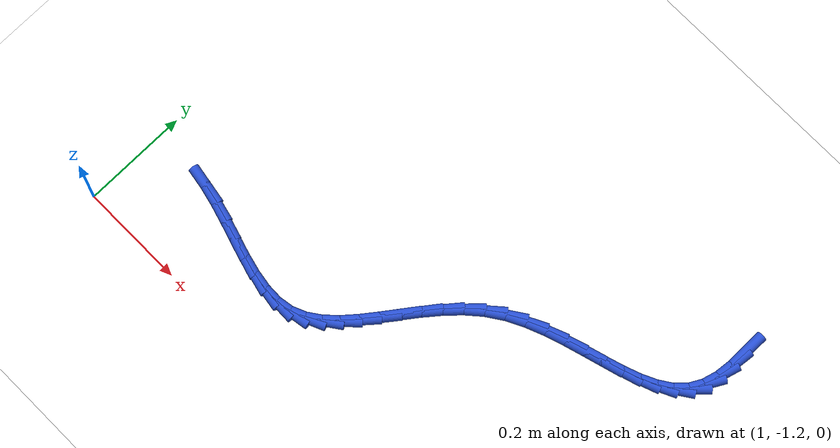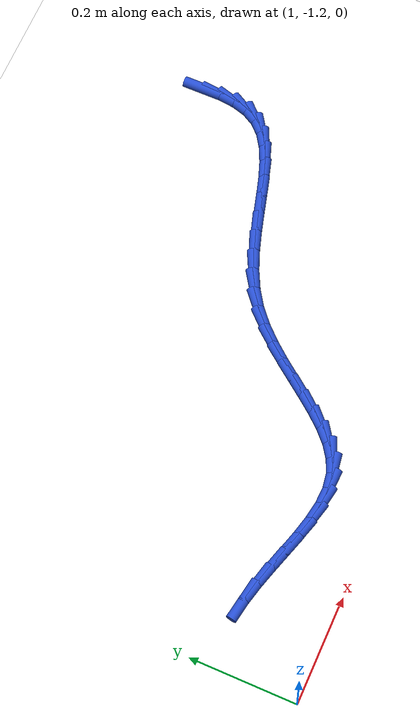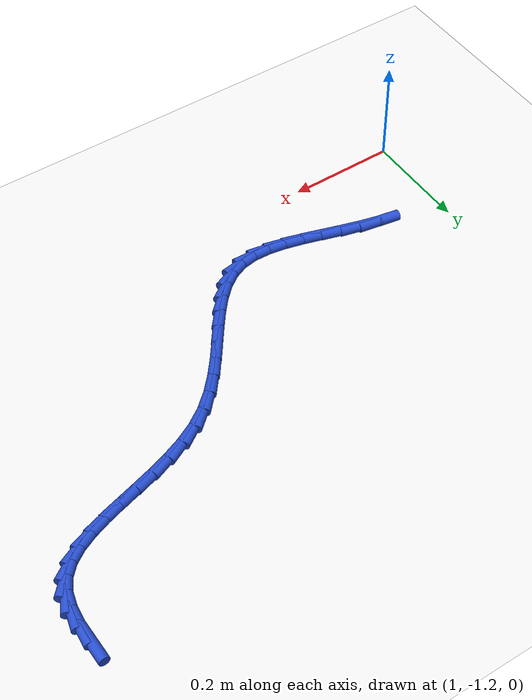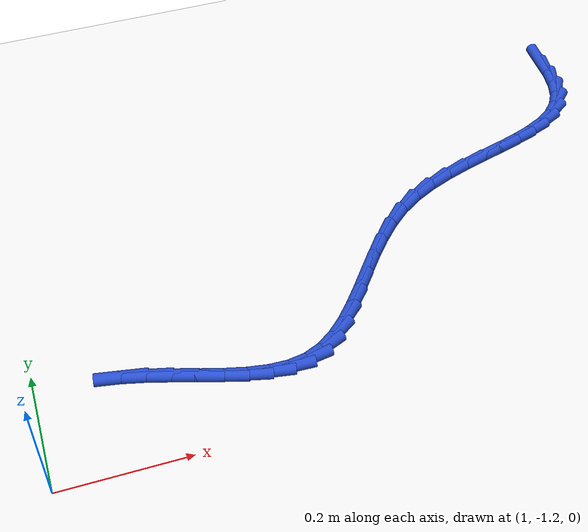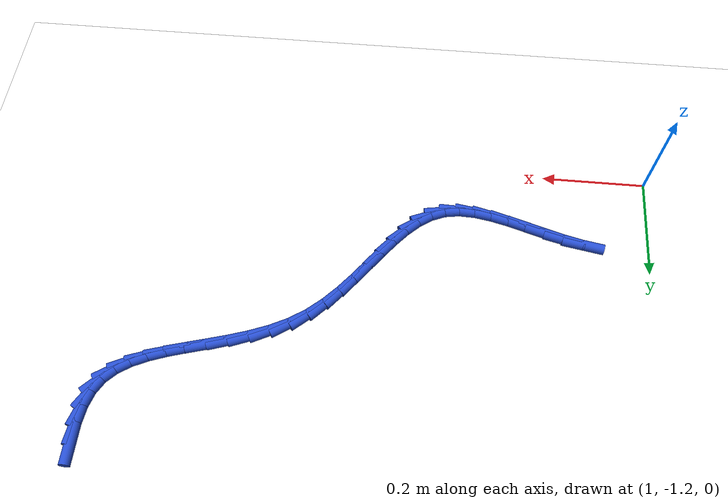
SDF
<sdf version="1.6">
 <world name="default">
  <model name="ground_plane">
   <static>1</static>
   <link name="link">
    <collision name="collision">
     <geometry><plane><normal>0 0 1</normal><size>100 100</size></plane></geometry>
     <surface><friction><ode><mu>100</mu><mu2>50</mu2></ode></friction></surface>
    </collision>
    <visual name="visual">
     <cast_shadows>0</cast_shadows>
     <geometry><plane><normal>0 0 1</normal><size>100 100</size></plane></geometry>
     <material>
      <script><uri>file://media/materials/scripts/gazebo.material</uri><name>Gazebo/WhiteGlow</name></script>
     </material>
    </visual>
   </link>
  </model>
  <model name="line">
   <link name="link_116">
    <pose>1.9984597130130652 -0.5840139245094204 0.01 0 1.57 -1.569146106106085</pose>
    <collision name="collision">
     <geometry><cylinder><radius>0.01</radius><length>0.08</length></cylinder></geometry>
    </collision>
    <visual name="visual">
     <material>
      <script><name>Gazebo/Blue</name><uri>file://media/materials/scripts/gazebo.material</uri></script>
     </material>
     <geometry><cylinder><radius>0.01</radius><length>0.08</length></cylinder></geometry>
    </visual>
   </link>
   <link name="link_117">
    <pose>1.998515716324242 -0.6179507553344195 0.01 0 1.57 1.4615613484740417</pose>
    <collision name="collision">
     <geometry><cylinder><radius>0.01</radius><length>0.08</length></cylinder></geometry>
    </collision>
    <visual name="visual">
     <material>
      <script><name>Gazebo/Blue</name><uri>file://media/materials/scripts/gazebo.material</uri></script>
     </material>
     <geometry><cylinder><radius>0.01</radius><length>0.08</length></cylinder></geometry>
    </visual>
   </link>
   <link name="link_118">
    <pose>1.995092621198045 -0.6491630027781213 0.01 0 1.57 1.295569979941581</pose>
    <collision name="collision">
     <geometry><cylinder><radius>0.01</radius><length>0.08</length></cylinder></geometry>
    </collision>
    <visual name="visual">
     <material>
      <script><name>Gazebo/Blue</name><uri>file://media/materials/scripts/gazebo.material</uri></script>
     </material>
     <geometry><cylinder><radius>0.01</radius><length>0.08</length></cylinder></geometry>
    </visual>
   </link>
   <link name="link_119">
    <pose>1.9872361721869987 -0.6769839795663476 0.01 0 1.57 1.0626116572683675</pose>
    <collision name="collision">
     <geometry><cylinder><radius>0.01</radius><length>0.08</length></cylinder></geometry>
    </collision>
    <visual name="visual">
     <material>
      <script><name>Gazebo/Blue</name><uri>file://media/materials/scripts/gazebo.material</uri></script>
     </material>
     <geometry><cylinder><radius>0.01</radius><length>0.08</length></cylinder></geometry>
    </visual>
   </link>
   <link name="link_120">
    <pose>1.9739980123722025 -0.7007518199422642 0.01 0 1.57 0.7999499154168489</pose>
    <collision name="collision">
     <geometry><cylinder><radius>0.01</radius><length>0.08</length></cylinder></geometry>
    </collision>
    <visual name="visual">
     <material>
      <script><name>Gazebo/Blue</name><uri>file://media/materials/scripts/gazebo.material</uri></script>
     </material>
     <geometry><cylinder><radius>0.01</radius><length>0.08</length></cylinder></geometry>
    </visual>
   </link>
   <link name="link_121">
    <pose>1.9550217591696548 -0.7202885440005515 0.01 0 1.57 0.5888854560158133</pose>
    <collision name="collision">
     <geometry><cylinder><radius>0.01</radius><length>0.08</length></cylinder></geometry>
    </collision>
    <visual name="visual">
     <material>
      <script><name>Gazebo/Blue</name><uri>file://media/materials/scripts/gazebo.material</uri></script>
     </material>
     <geometry><cylinder><radius>0.01</radius><length>0.08</length></cylinder></geometry>
    </visual>
   </link>
   <link name="link_122">
    <pose>1.9310404556127827 -0.7363066794330555 0.01 0 1.57 0.4417985743106785</pose>
    <collision name="collision">
     <geometry><cylinder><radius>0.01</radius><length>0.08</length></cylinder></geometry>
    </collision>
    <visual name="visual">
     <material>
      <script><name>Gazebo/Blue</name><uri>file://media/materials/scripts/gazebo.material</uri></script>
     </material>
     <geometry><cylinder><radius>0.01</radius><length>0.08</length></cylinder></geometry>
    </visual>
   </link>
   <link name="link_123">
    <pose>1.9029042914673377 -0.749614510863944 0.01 0 1.57 0.3480061803123812</pose>
    <collision name="collision">
     <geometry><cylinder><radius>0.01</radius><length>0.08</length></cylinder></geometry>
    </collision>
    <visual name="visual">
     <material>
      <script><name>Gazebo/Blue</name><uri>file://media/materials/scripts/gazebo.material</uri></script>
     </material>
     <geometry><cylinder><radius>0.01</radius><length>0.08</length></cylinder></geometry>
    </visual>
   </link>
   <link name="link_124">
    <pose>1.8714634564990735 -0.761020322917386 0.01 0 1.57 0.2953358398342895</pose>
    <collision name="collision">
     <geometry><cylinder><radius>0.01</radius><length>0.08</length></cylinder></geometry>
    </collision>
    <visual name="visual">
     <material>
      <script><name>Gazebo/Blue</name><uri>file://media/materials/scripts/gazebo.material</uri></script>
     </material>
     <geometry><cylinder><radius>0.01</radius><length>0.08</length></cylinder></geometry>
    </visual>
   </link>
   <link name="link_125">
    <pose>1.837568140473741 -0.7713324002175489 0.01 0 1.57 0.27527295848870936</pose>
    <collision name="collision">
     <geometry><cylinder><radius>0.01</radius><length>0.08</length></cylinder></geometry>
    </collision>
    <visual name="visual">
     <material>
      <script><name>Gazebo/Blue</name><uri>file://media/materials/scripts/gazebo.material</uri></script>
     </material>
     <geometry><cylinder><radius>0.01</radius><length>0.08</length></cylinder></geometry>
    </visual>
   </link>
   <link name="link_126">
    <pose>1.8020685331570931 -0.7813590273886014 0.01 0 1.57 0.28317025091269693</pose>
    <collision name="collision">
     <geometry><cylinder><radius>0.01</radius><length>0.08</length></cylinder></geometry>
    </collision>
    <visual name="visual">
     <material>
      <script><name>Gazebo/Blue</name><uri>file://media/materials/scripts/gazebo.material</uri></script>
     </material>
     <geometry><cylinder><radius>0.01</radius><length>0.08</length></cylinder></geometry>
    </visual>
   </link>
   <link name="link_127">
    <pose>1.7658148243148826 -0.7919084890547117 0.01 0 1.57 0.3174642201169591</pose>
    <collision name="collision">
     <geometry><cylinder><radius>0.01</radius><length>0.08</length></cylinder></geometry>
    </collision>
    <visual name="visual">
     <material>
      <script><name>Gazebo/Blue</name><uri>file://media/materials/scripts/gazebo.material</uri></script>
     </material>
     <geometry><cylinder><radius>0.01</radius><length>0.08</length></cylinder></geometry>
    </visual>
   </link>
   <link name="link_128">
    <pose>1.729657203712861 -0.8037890698400477 0.01 0 1.57 0.37892495856002817</pose>
    <collision name="collision">
     <geometry><cylinder><radius>0.01</radius><length>0.08</length></cylinder></geometry>
    </collision>
    <visual name="visual">
     <material>
      <script><name>Gazebo/Blue</name><uri>file://media/materials/scripts/gazebo.material</uri></script>
     </material>
     <geometry><cylinder><radius>0.01</radius><length>0.08</length></cylinder></geometry>
    </visual>
   </link>
   <link name="link_129">
    <pose>1.694445861116781 -0.8178090543687779 0.01 0 1.57 0.4698585909112312</pose>
    <collision name="collision">
     <geometry><cylinder><radius>0.01</radius><length>0.08</length></cylinder></geometry>
    </collision>
    <visual name="visual">
     <material>
      <script><name>Gazebo/Blue</name><uri>file://media/materials/scripts/gazebo.material</uri></script>
     </material>
     <geometry><cylinder><radius>0.01</radius><length>0.08</length></cylinder></geometry>
    </visual>
   </link>
   <link name="link_130">
    <pose>1.6610309862923947 -0.8347767272650706 0.01 0 1.57 0.592131646020971</pose>
    <collision name="collision">
     <geometry><cylinder><radius>0.01</radius><length>0.08</length></cylinder></geometry>
    </collision>
    <visual name="visual">
     <material>
      <script><name>Gazebo/Blue</name><uri>file://media/materials/scripts/gazebo.material</uri></script>
     </material>
     <geometry><cylinder><radius>0.01</radius><length>0.08</length></cylinder></geometry>
    </visual>
   </link>
   <link name="link_131">
    <pose>1.6302490847987956 -0.8554820913040657 0.01 0 1.57 0.7203260315740742</pose>
    <collision name="collision">
     <geometry><cylinder><radius>0.01</radius><length>0.08</length></cylinder></geometry>
    </collision>
    <visual name="visual">
     <material>
      <script><name>Gazebo/Blue</name><uri>file://media/materials/scripts/gazebo.material</uri></script>
     </material>
     <geometry><cylinder><radius>0.01</radius><length>0.08</length></cylinder></geometry>
    </visual>
   </link>
   <link name="link_132">
    <pose>1.602366353859953 -0.8799532277888091 0.01 0 1.57 0.818829501667175</pose>
    <collision name="collision">
     <geometry><cylinder><radius>0.01</radius><length>0.08</length></cylinder></geometry>
    </collision>
    <visual name="visual">
     <material>
      <script><name>Gazebo/Blue</name><uri>file://media/materials/scripts/gazebo.material</uri></script>
     </material>
     <geometry><cylinder><radius>0.01</radius><length>0.08</length></cylinder></geometry>
    </visual>
   </link>
   <link name="link_133">
    <pose>1.5768851667984813 -0.9071977633042597 0.01 0 1.57 0.8862905479098602</pose>
    <collision name="collision">
     <geometry><cylinder><radius>0.01</radius><length>0.08</length></cylinder></geometry>
    </collision>
    <visual name="visual">
     <material>
      <script><name>Gazebo/Blue</name><uri>file://media/materials/scripts/gazebo.material</uri></script>
     </material>
     <geometry><cylinder><radius>0.01</radius><length>0.08</length></cylinder></geometry>
    </visual>
   </link>
   <link name="link_134">
    <pose>1.5532544710487386 -0.9361519484288873 0.01 0 1.57 0.9244646498142458</pose>
    <collision name="collision">
     <geometry><cylinder><radius>0.01</radius><length>0.08</length></cylinder></geometry>
    </collision>
    <visual name="visual">
     <material>
      <script><name>Gazebo/Blue</name><uri>file://media/materials/scripts/gazebo.material</uri></script>
     </material>
     <geometry><cylinder><radius>0.01</radius><length>0.08</length></cylinder></geometry>
    </visual>
   </link>
   <link name="link_135">
    <pose>1.5309232140450826 -0.9657520337411617 0.01 0 1.57 0.9339914001671235</pose>
    <collision name="collision">
     <geometry><cylinder><radius>0.01</radius><length>0.08</length></cylinder></geometry>
    </collision>
    <visual name="visual">
     <material>
      <script><name>Gazebo/Blue</name><uri>file://media/materials/scripts/gazebo.material</uri></script>
     </material>
     <geometry><cylinder><radius>0.01</radius><length>0.08</length></cylinder></geometry>
    </visual>
   </link>
   <link name="link_136">
    <pose>1.5093403432218706 -0.9949342698195527 0.01 0 1.57 0.9133486585284751</pose>
    <collision name="collision">
     <geometry><cylinder><radius>0.01</radius><length>0.08</length></cylinder></geometry>
    </collision>
    <visual name="visual">
     <material>
      <script><name>Gazebo/Blue</name><uri>file://media/materials/scripts/gazebo.material</uri></script>
     </material>
     <geometry><cylinder><radius>0.01</radius><length>0.08</length></cylinder></geometry>
    </visual>
   </link>
   <link name="link_137">
    <pose>1.4879548060134609 -1.0226349072425303 0.01 0 1.57 0.8581147244018653</pose>
    <collision name="collision">
     <geometry><cylinder><radius>0.01</radius><length>0.08</length></cylinder></geometry>
    </collision>
    <visual name="visual">
     <material>
      <script><name>Gazebo/Blue</name><uri>file://media/materials/scripts/gazebo.material</uri></script>
     </material>
     <geometry><cylinder><radius>0.01</radius><length>0.08</length></cylinder></geometry>
    </visual>
   </link>
   <link name="link_138">
    <pose>1.4662155498542107 -1.0477901965885639 0.01 0 1.57 0.7605598606241643</pose>
    <collision name="collision">
     <geometry><cylinder><radius>0.01</radius><length>0.08</length></cylinder></geometry>
    </collision>
    <visual name="visual">
     <material>
      <script><name>Gazebo/Blue</name><uri>file://media/materials/scripts/gazebo.material</uri></script>
     </material>
     <geometry><cylinder><radius>0.01</radius><length>0.08</length></cylinder></geometry>
    </visual>
   </link>
   <link name="link_139">
    <pose>1.4435715221784782 -1.069336388436124 0.01 0 1.57 0.6108219984314376</pose>
    <collision name="collision">
     <geometry><cylinder><radius>0.01</radius><length>0.08</length></cylinder></geometry>
    </collision>
    <visual name="visual">
     <material>
      <script><name>Gazebo/Blue</name><uri>file://media/materials/scripts/gazebo.material</uri></script>
     </material>
     <geometry><cylinder><radius>0.01</radius><length>0.08</length></cylinder></geometry>
    </visual>
   </link>
   <link name="link_140">
    <pose>1.4194716704206207 -1.0862097333636798 0.01 0 1.57 0.40321270952590194</pose>
    <collision name="collision">
     <geometry><cylinder><radius>0.01</radius><length>0.08</length></cylinder></geometry>
    </collision>
    <visual name="visual">
     <material>
      <script><name>Gazebo/Blue</name><uri>file://media/materials/scripts/gazebo.material</uri></script>
     </material>
     <geometry><cylinder><radius>0.01</radius><length>0.08</length></cylinder></geometry>
    </visual>
   </link>
   <link name="link_141">
    <pose>1.3933649420149967 -1.097346481949701 0.01 0 1.57 0.1626080006340524</pose>
    <collision name="collision">
     <geometry><cylinder><radius>0.01</radius><length>0.08</length></cylinder></geometry>
    </collision>
    <visual name="visual">
     <material>
      <script><name>Gazebo/Blue</name><uri>file://media/materials/scripts/gazebo.material</uri></script>
     </material>
     <geometry><cylinder><radius>0.01</radius><length>0.08</length></cylinder></geometry>
    </visual>
   </link>
   <link name="link_142">
    <pose>1.3648419894449448 -1.1020258581508002 0.01 0 1.57 -0.031278313162701375</pose>
    <collision name="collision">
     <geometry><cylinder><radius>0.01</radius><length>0.08</length></cylinder></geometry>
    </collision>
    <visual name="visual">
     <material>
      <script><name>Gazebo/Blue</name><uri>file://media/materials/scripts/gazebo.material</uri></script>
     </material>
     <geometry><cylinder><radius>0.01</radius><length>0.08</length></cylinder></geometry>
    </visual>
   </link>
   <link name="link_143">
    <pose>1.3341288336515391 -1.1010648890426813 0.01 0 1.57 -0.16325918436291972</pose>
    <collision name="collision">
     <geometry><cylinder><radius>0.01</radius><length>0.08</length></cylinder></geometry>
    </collision>
    <visual name="visual">
     <material>
      <script><name>Gazebo/Blue</name><uri>file://media/materials/scripts/gazebo.material</uri></script>
     </material>
     <geometry><cylinder><radius>0.01</radius><length>0.08</length></cylinder></geometry>
    </visual>
   </link>
   <link name="link_144">
    <pose>1.301629497789979 -1.0957114262985779 0.01 0 1.57 -0.24574832688905304</pose>
    <collision name="collision">
     <geometry><cylinder><radius>0.01</radius><length>0.08</length></cylinder></geometry>
    </collision>
    <visual name="visual">
     <material>
      <script><name>Gazebo/Blue</name><uri>file://media/materials/scripts/gazebo.material</uri></script>
     </material>
     <geometry><cylinder><radius>0.01</radius><length>0.08</length></cylinder></geometry>
    </visual>
   </link>
   <link name="link_145">
    <pose>1.26774801376553 -1.0872133427697956 0.01 0 1.57 -0.28979666277002175</pose>
    <collision name="collision">
     <geometry><cylinder><radius>0.01</radius><length>0.08</length></cylinder></geometry>
    </collision>
    <visual name="visual">
     <material>
      <script><name>Gazebo/Blue</name><uri>file://media/materials/scripts/gazebo.material</uri></script>
     </material>
     <geometry><cylinder><radius>0.01</radius><length>0.08</length></cylinder></geometry>
    </visual>
   </link>
   <link name="link_146">
    <pose>1.232888413483457 -1.0768185113076387 0.01 0 1.57 -0.30213084968107673</pose>
    <collision name="collision">
     <geometry><cylinder><radius>0.01</radius><length>0.08</length></cylinder></geometry>
    </collision>
    <visual name="visual">
     <material>
      <script><name>Gazebo/Blue</name><uri>file://media/materials/scripts/gazebo.material</uri></script>
     </material>
     <geometry><cylinder><radius>0.01</radius><length>0.08</length></cylinder></geometry>
    </visual>
   </link>
   <link name="link_147">
    <pose>1.1974547288490256 -1.0657748047634135 0.01 0 1.57 -0.2853538825159715</pose>
    <collision name="collision">
     <geometry><cylinder><radius>0.01</radius><length>0.08</length></cylinder></geometry>
    </collision>
    <visual name="visual">
     <material>
      <script><name>Gazebo/Blue</name><uri>file://media/materials/scripts/gazebo.material</uri></script>
     </material>
     <geometry><cylinder><radius>0.01</radius><length>0.08</length></cylinder></geometry>
    </visual>
   </link>
   <link name="link_148">
    <pose>1.1618509917675008 -1.0553300959884242 0.01 0 1.57 -0.23860760994449867</pose>
    <collision name="collision">
     <geometry><cylinder><radius>0.01</radius><length>0.08</length></cylinder></geometry>
    </collision>
    <visual name="visual">
     <material>
      <script><name>Gazebo/Blue</name><uri>file://media/materials/scripts/gazebo.material</uri></script>
     </material>
     <geometry><cylinder><radius>0.01</radius><length>0.08</length></cylinder></geometry>
    </visual>
   </link>
   <link name="link_149">
    <pose>1.1264795714716602 -1.0467263011574335 0.01 0 1.57 -0.17272685762249546</pose>
    <collision name="collision">
     <geometry><cylinder><radius>0.01</radius><length>0.08</length></cylinder></geometry>
    </collision>
    <visual name="visual">
     <material>
      <script><name>Gazebo/Blue</name><uri>file://media/materials/scripts/gazebo.material</uri></script>
     </material>
     <geometry><cylinder><radius>0.01</radius><length>0.08</length></cylinder></geometry>
    </visual>
   </link>
  </model>
 </world>
</sdf>
